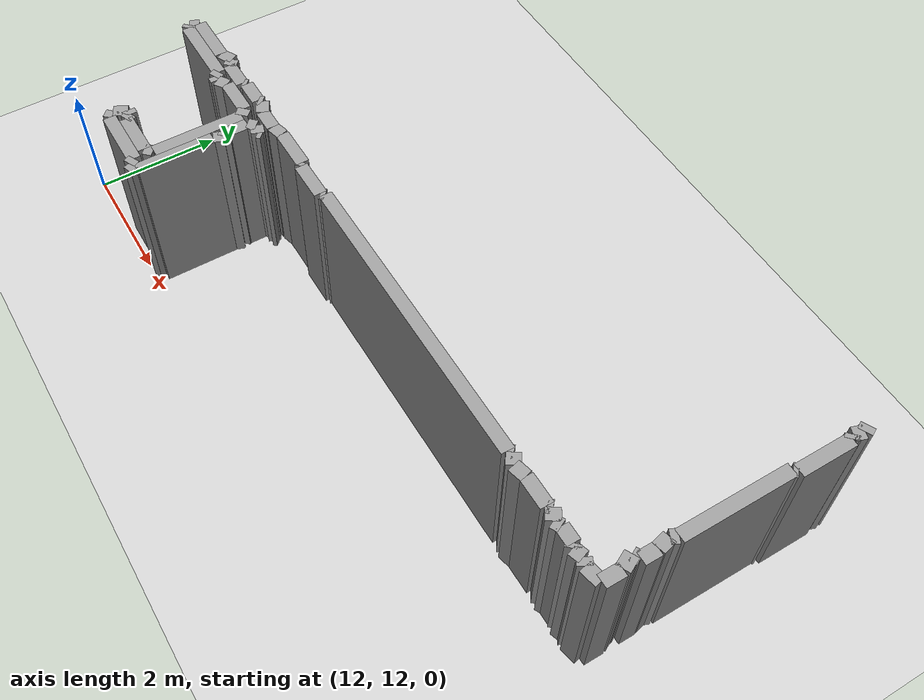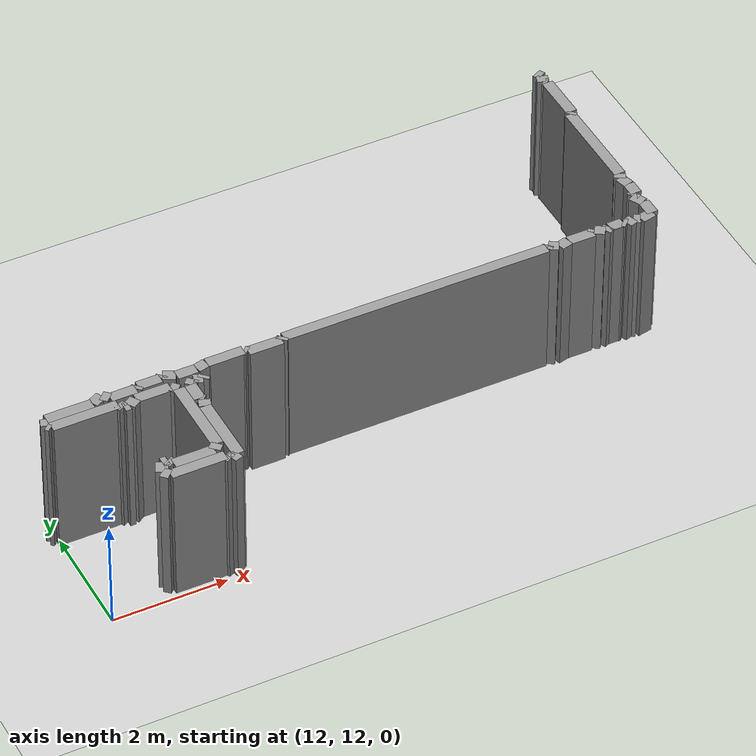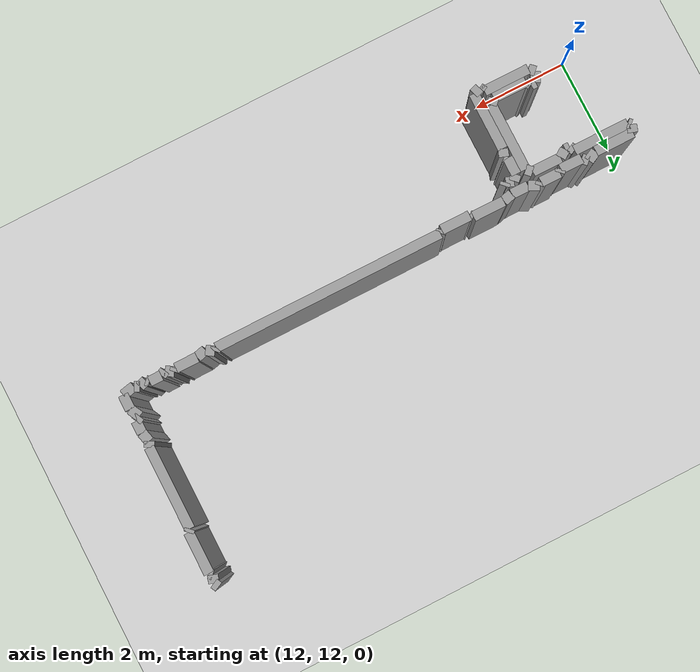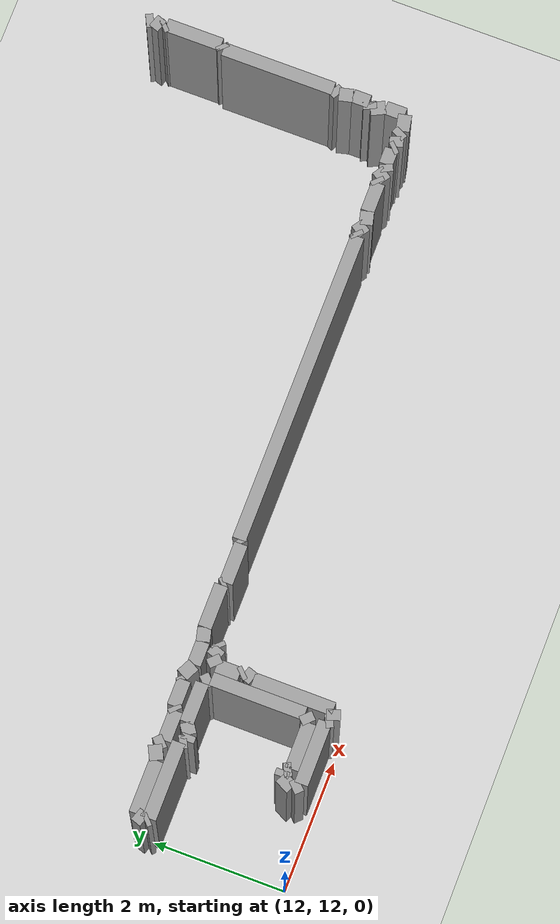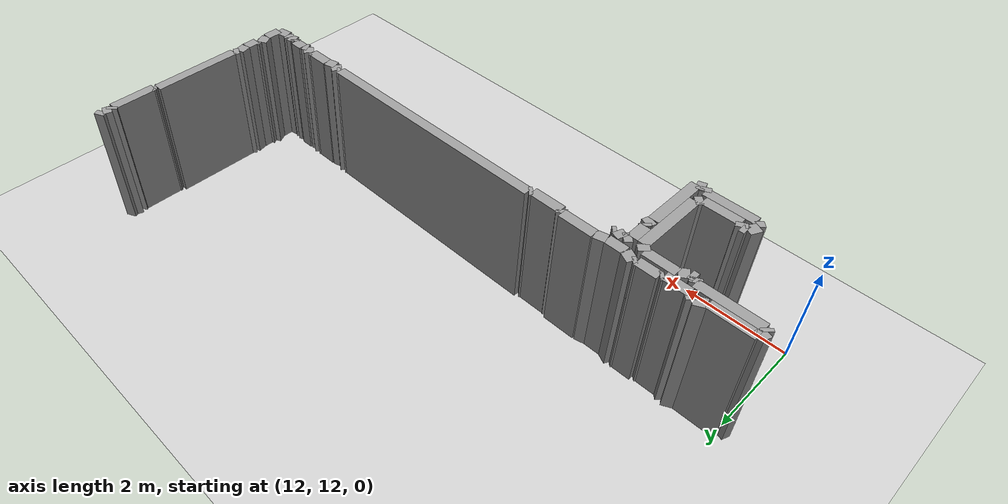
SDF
<sdf version="1.4">
 <world name="1_wall">
  <model name="ground_plane">
   <static>1</static>
   <link name="link">
    <collision name="collision">
     <geometry><plane><normal>0 0 1</normal><size>1000 1000</size></plane></geometry>
     <surface><friction><ode><mu>100</mu><mu2>50</mu2></ode></friction></surface>
    </collision>
    <visual name="visual">
     <cast_shadows>0</cast_shadows>
     <geometry><plane><normal>0 0 1</normal><size>10000 10000</size></plane></geometry>
     <material>
      <script><uri>file://media/materials/scripts/gazebo.material</uri><name>Gazebo/Grey</name></script>
     </material>
    </visual>
    <velocity_decay><linear>0</linear><angular>0</angular></velocity_decay>
   </link>
  </model>
  <model name="Wall_386">
   <static>1</static>
   <link name="Wall_386">
    <collision name="Wall_Collision_386">
     <geometry><box><size>0.111803398875 0.2 2.5</size></box></geometry>
     <pose>0 0 1.25 0 -0 0</pose>
    </collision>
    <visual name="Wall_Visual_386">
     <pose>0 0 1.25 0 -0 0</pose>
     <geometry><box><size>0.111803398875 0.2 2.5</size></box></geometry>
     <material>
      <script><uri>file://media/materials/scripts/gazebo.material</uri><name>Gazebo/Grey</name></script>
     </material>
    </visual>
    <velocity_decay><linear>0</linear><angular>0</angular></velocity_decay>
    <pose>22.825 18.2 0 0 0 -1.10714871779</pose>
   </link>
  </model>
  <model name="Wall_387">
   <static>1</static>
   <link name="Wall_387">
    <collision name="Wall_Collision_387">
     <geometry><box><size>0.158113883008 0.2 2.5</size></box></geometry>
     <pose>0 0 1.25 0 -0 0</pose>
    </collision>
    <visual name="Wall_Visual_387">
     <pose>0 0 1.25 0 -0 0</pose>
     <geometry><box><size>0.158113883008 0.2 2.5</size></box></geometry>
     <material>
      <script><uri>file://media/materials/scripts/gazebo.material</uri><name>Gazebo/Grey</name></script>
     </material>
    </visual>
    <velocity_decay><linear>0</linear><angular>0</angular></velocity_decay>
    <pose>22.825 18.075 0 0 0 -1.89254688119</pose>
   </link>
  </model>
  <model name="Wall_388">
   <static>1</static>
   <link name="Wall_388">
    <collision name="Wall_Collision_388">
     <geometry><box><size>0.0707106781187 0.2 2.5</size></box></geometry>
     <pose>0 0 1.25 0 -0 0</pose>
    </collision>
    <visual name="Wall_Visual_388">
     <pose>0 0 1.25 0 -0 0</pose>
     <geometry><box><size>0.0707106781187 0.2 2.5</size></box></geometry>
     <material>
      <script><uri>file://media/materials/scripts/gazebo.material</uri><name>Gazebo/Grey</name></script>
     </material>
    </visual>
    <velocity_decay><linear>0</linear><angular>0</angular></velocity_decay>
    <pose>22.825 17.975 0 0 0 -0.785398163397</pose>
   </link>
  </model>
  <model name="Wall_389">
   <static>1</static>
   <link name="Wall_389">
    <collision name="Wall_Collision_389">
     <geometry><box><size>0.85 0.2 2.5</size></box></geometry>
     <pose>0 0 1.25 0 -0 0</pose>
    </collision>
    <visual name="Wall_Visual_389">
     <pose>0 0 1.25 0 -0 0</pose>
     <geometry><box><size>0.85 0.2 2.5</size></box></geometry>
     <material>
      <script><uri>file://media/materials/scripts/gazebo.material</uri><name>Gazebo/Grey</name></script>
     </material>
    </visual>
    <velocity_decay><linear>0</linear><angular>0</angular></velocity_decay>
    <pose>22.85 17.525 0 0 0 -1.57079632679</pose>
   </link>
  </model>
  <model name="Wall_390">
   <static>1</static>
   <link name="Wall_390">
    <collision name="Wall_Collision_390">
     <geometry><box><size>0.0707106781187 0.2 2.5</size></box></geometry>
     <pose>0 0 1.25 0 -0 0</pose>
    </collision>
    <visual name="Wall_Visual_390">
     <pose>0 0 1.25 0 -0 0</pose>
     <geometry><box><size>0.0707106781187 0.2 2.5</size></box></geometry>
     <material>
      <script><uri>file://media/materials/scripts/gazebo.material</uri><name>Gazebo/Grey</name></script>
     </material>
    </visual>
    <velocity_decay><linear>0</linear><angular>0</angular></velocity_decay>
    <pose>22.825 17.075 0 0 0 -2.35619449019</pose>
   </link>
  </model>
  <model name="Wall_391">
   <static>1</static>
   <link name="Wall_391">
    <collision name="Wall_Collision_391">
     <geometry><box><size>1.7 0.2 2.5</size></box></geometry>
     <pose>0 0 1.25 0 -0 0</pose>
    </collision>
    <visual name="Wall_Visual_391">
     <pose>0 0 1.25 0 -0 0</pose>
     <geometry><box><size>1.7 0.2 2.5</size></box></geometry>
     <material>
      <script><uri>file://media/materials/scripts/gazebo.material</uri><name>Gazebo/Grey</name></script>
     </material>
    </visual>
    <velocity_decay><linear>0</linear><angular>0</angular></velocity_decay>
    <pose>22.8 16.2 0 0 0 -1.57079632679</pose>
   </link>
  </model>
  <model name="Wall_392">
   <static>1</static>
   <link name="Wall_392">
    <collision name="Wall_Collision_392">
     <geometry><box><size>0.111803398875 0.2 2.5</size></box></geometry>
     <pose>0 0 1.25 0 -0 0</pose>
    </collision>
    <visual name="Wall_Visual_392">
     <pose>0 0 1.25 0 -0 0</pose>
     <geometry><box><size>0.111803398875 0.2 2.5</size></box></geometry>
     <material>
      <script><uri>file://media/materials/scripts/gazebo.material</uri><name>Gazebo/Grey</name></script>
     </material>
    </visual>
    <velocity_decay><linear>0</linear><angular>0</angular></velocity_decay>
    <pose>22.775 15.3 0 0 0 -2.0344439358</pose>
   </link>
  </model>
  <model name="Wall_393">
   <static>1</static>
   <link name="Wall_393">
    <collision name="Wall_Collision_393">
     <geometry><box><size>0.206155281281 0.2 2.5</size></box></geometry>
     <pose>0 0 1.25 0 -0 0</pose>
    </collision>
    <visual name="Wall_Visual_393">
     <pose>0 0 1.25 0 -0 0</pose>
     <geometry><box><size>0.206155281281 0.2 2.5</size></box></geometry>
     <material>
      <script><uri>file://media/materials/scripts/gazebo.material</uri><name>Gazebo/Grey</name></script>
     </material>
    </visual>
    <velocity_decay><linear>0</linear><angular>0</angular></velocity_decay>
    <pose>22.775 15.15 0 0 0 -1.32581766367</pose>
   </link>
  </model>
  <model name="Wall_394">
   <static>1</static>
   <link name="Wall_394">
    <collision name="Wall_Collision_394">
     <geometry><box><size>0.25 0.2 2.5</size></box></geometry>
     <pose>0 0 1.25 0 -0 0</pose>
    </collision>
    <visual name="Wall_Visual_394">
     <pose>0 0 1.25 0 -0 0</pose>
     <geometry><box><size>0.25 0.2 2.5</size></box></geometry>
     <material>
      <script><uri>file://media/materials/scripts/gazebo.material</uri><name>Gazebo/Grey</name></script>
     </material>
    </visual>
    <velocity_decay><linear>0</linear><angular>0</angular></velocity_decay>
    <pose>22.8 14.925 0 0 0 -1.57079632679</pose>
   </link>
  </model>
  <model name="Wall_395">
   <static>1</static>
   <link name="Wall_395">
    <collision name="Wall_Collision_395">
     <geometry><box><size>0.111803398875 0.2 2.5</size></box></geometry>
     <pose>0 0 1.25 0 -0 0</pose>
    </collision>
    <visual name="Wall_Visual_395">
     <pose>0 0 1.25 0 -0 0</pose>
     <geometry><box><size>0.111803398875 0.2 2.5</size></box></geometry>
     <material>
      <script><uri>file://media/materials/scripts/gazebo.material</uri><name>Gazebo/Grey</name></script>
     </material>
    </visual>
    <velocity_decay><linear>0</linear><angular>0</angular></velocity_decay>
    <pose>22.75 14.775 0 0 0 -2.67794504459</pose>
   </link>
  </model>
  <model name="Wall_396">
   <static>1</static>
   <link name="Wall_396">
    <collision name="Wall_Collision_396">
     <geometry><box><size>0.22360679775 0.2 2.5</size></box></geometry>
     <pose>0 0 1.25 0 -0 0</pose>
    </collision>
    <visual name="Wall_Visual_396">
     <pose>0 0 1.25 0 -0 0</pose>
     <geometry><box><size>0.22360679775 0.2 2.5</size></box></geometry>
     <material>
      <script><uri>file://media/materials/scripts/gazebo.material</uri><name>Gazebo/Grey</name></script>
     </material>
    </visual>
    <velocity_decay><linear>0</linear><angular>0</angular></velocity_decay>
    <pose>22.75 14.65 0 0 0 -1.10714871779</pose>
   </link>
  </model>
  <model name="Wall_397">
   <static>1</static>
   <link name="Wall_397">
    <collision name="Wall_Collision_397">
     <geometry><box><size>0.3 0.2 2.5</size></box></geometry>
     <pose>0 0 1.25 0 -0 0</pose>
    </collision>
    <visual name="Wall_Visual_397">
     <pose>0 0 1.25 0 -0 0</pose>
     <geometry><box><size>0.3 0.2 2.5</size></box></geometry>
     <material>
      <script><uri>file://media/materials/scripts/gazebo.material</uri><name>Gazebo/Grey</name></script>
     </material>
    </visual>
    <velocity_decay><linear>0</linear><angular>0</angular></velocity_decay>
    <pose>22.8 14.4 0 0 0 -1.57079632679</pose>
   </link>
  </model>
  <model name="Wall_398">
   <static>1</static>
   <link name="Wall_398">
    <collision name="Wall_Collision_398">
     <geometry><box><size>0.25495097568 0.2 2.5</size></box></geometry>
     <pose>0 0 1.25 0 -0 0</pose>
    </collision>
    <visual name="Wall_Visual_398">
     <pose>0 0 1.25 0 -0 0</pose>
     <geometry><box><size>0.25495097568 0.2 2.5</size></box></geometry>
     <material>
      <script><uri>file://media/materials/scripts/gazebo.material</uri><name>Gazebo/Grey</name></script>
     </material>
    </visual>
    <velocity_decay><linear>0</linear><angular>0</angular></velocity_decay>
    <pose>22.675 14.225 0 0 0 -2.94419709374</pose>
   </link>
  </model>
  <model name="Wall_399">
   <static>1</static>
   <link name="Wall_399">
    <collision name="Wall_Collision_399">
     <geometry><box><size>0.111803398875 0.2 2.5</size></box></geometry>
     <pose>0 0 1.25 0 -0 0</pose>
    </collision>
    <visual name="Wall_Visual_399">
     <pose>0 0 1.25 0 -0 0</pose>
     <geometry><box><size>0.111803398875 0.2 2.5</size></box></geometry>
     <material>
      <script><uri>file://media/materials/scripts/gazebo.material</uri><name>Gazebo/Grey</name></script>
     </material>
    </visual>
    <velocity_decay><linear>0</linear><angular>0</angular></velocity_decay>
    <pose>22.5 14.225 0 0 0 2.67794504459</pose>
   </link>
  </model>
  <model name="Wall_400">
   <static>1</static>
   <link name="Wall_400">
    <collision name="Wall_Collision_400">
     <geometry><box><size>0.158113883008 0.2 2.5</size></box></geometry>
     <pose>0 0 1.25 0 -0 0</pose>
    </collision>
    <visual name="Wall_Visual_400">
     <pose>0 0 1.25 0 -0 0</pose>
     <geometry><box><size>0.158113883008 0.2 2.5</size></box></geometry>
     <material>
      <script><uri>file://media/materials/scripts/gazebo.material</uri><name>Gazebo/Grey</name></script>
     </material>
    </visual>
    <velocity_decay><linear>0</linear><angular>0</angular></velocity_decay>
    <pose>22.375 14.225 0 0 0 -2.81984209919</pose>
   </link>
  </model>
  <model name="Wall_401">
   <static>1</static>
   <link name="Wall_401">
    <collision name="Wall_Collision_401">
     <geometry><box><size>0.0707106781187 0.2 2.5</size></box></geometry>
     <pose>0 0 1.25 0 -0 0</pose>
    </collision>
    <visual name="Wall_Visual_401">
     <pose>0 0 1.25 0 -0 0</pose>
     <geometry><box><size>0.0707106781187 0.2 2.5</size></box></geometry>
     <material>
      <script><uri>file://media/materials/scripts/gazebo.material</uri><name>Gazebo/Grey</name></script>
     </material>
    </visual>
    <velocity_decay><linear>0</linear><angular>0</angular></velocity_decay>
    <pose>22.275 14.225 0 0 0 2.35619449019</pose>
   </link>
  </model>
  <model name="Wall_402">
   <static>1</static>
   <link name="Wall_402">
    <collision name="Wall_Collision_402">
     <geometry><box><size>0.25 0.2 2.5</size></box></geometry>
     <pose>0 0 1.25 0 -0 0</pose>
    </collision>
    <visual name="Wall_Visual_402">
     <pose>0 0 1.25 0 -0 0</pose>
     <geometry><box><size>0.25 0.2 2.5</size></box></geometry>
     <material>
      <script><uri>file://media/materials/scripts/gazebo.material</uri><name>Gazebo/Grey</name></script>
     </material>
    </visual>
    <velocity_decay><linear>0</linear><angular>0</angular></velocity_decay>
    <pose>22.125 14.25 0 0 0 3.14159265359</pose>
   </link>
  </model>
  <model name="Wall_403">
   <static>1</static>
   <link name="Wall_403">
    <collision name="Wall_Collision_403">
     <geometry><box><size>0.111803398875 0.2 2.5</size></box></geometry>
     <pose>0 0 1.25 0 -0 0</pose>
    </collision>
    <visual name="Wall_Visual_403">
     <pose>0 0 1.25 0 -0 0</pose>
     <geometry><box><size>0.111803398875 0.2 2.5</size></box></geometry>
     <material>
      <script><uri>file://media/materials/scripts/gazebo.material</uri><name>Gazebo/Grey</name></script>
     </material>
    </visual>
    <velocity_decay><linear>0</linear><angular>0</angular></velocity_decay>
    <pose>21.95 14.225 0 0 0 -2.67794504459</pose>
   </link>
  </model>
  <model name="Wall_404">
   <static>1</static>
   <link name="Wall_404">
    <collision name="Wall_Collision_404">
     <geometry><box><size>0.180277563773 0.2 2.5</size></box></geometry>
     <pose>0 0 1.25 0 -0 0</pose>
    </collision>
    <visual name="Wall_Visual_404">
     <pose>0 0 1.25 0 -0 0</pose>
     <geometry><box><size>0.180277563773 0.2 2.5</size></box></geometry>
     <material>
      <script><uri>file://media/materials/scripts/gazebo.material</uri><name>Gazebo/Grey</name></script>
     </material>
    </visual>
    <velocity_decay><linear>0</linear><angular>0</angular></velocity_decay>
    <pose>21.825 14.25 0 0 0 2.55359005004</pose>
   </link>
  </model>
  <model name="Wall_405">
   <static>1</static>
   <link name="Wall_405">
    <collision name="Wall_Collision_405">
     <geometry><box><size>0.0707106781187 0.2 2.5</size></box></geometry>
     <pose>0 0 1.25 0 -0 0</pose>
    </collision>
    <visual name="Wall_Visual_405">
     <pose>0 0 1.25 0 -0 0</pose>
     <geometry><box><size>0.0707106781187 0.2 2.5</size></box></geometry>
     <material>
      <script><uri>file://media/materials/scripts/gazebo.material</uri><name>Gazebo/Grey</name></script>
     </material>
    </visual>
    <velocity_decay><linear>0</linear><angular>0</angular></velocity_decay>
    <pose>21.725 14.275 0 0 0 -2.35619449019</pose>
   </link>
  </model>
  <model name="Wall_406">
   <static>1</static>
   <link name="Wall_406">
    <collision name="Wall_Collision_406">
     <geometry><box><size>0.45 0.2 2.5</size></box></geometry>
     <pose>0 0 1.25 0 -0 0</pose>
    </collision>
    <visual name="Wall_Visual_406">
     <pose>0 0 1.25 0 -0 0</pose>
     <geometry><box><size>0.45 0.2 2.5</size></box></geometry>
     <material>
      <script><uri>file://media/materials/scripts/gazebo.material</uri><name>Gazebo/Grey</name></script>
     </material>
    </visual>
    <velocity_decay><linear>0</linear><angular>0</angular></velocity_decay>
    <pose>21.475 14.25 0 0 0 3.14159265359</pose>
   </link>
  </model>
  <model name="Wall_407">
   <static>1</static>
   <link name="Wall_407">
    <collision name="Wall_Collision_407">
     <geometry><box><size>0.206155281281 0.2 2.5</size></box></geometry>
     <pose>0 0 1.25 0 -0 0</pose>
    </collision>
    <visual name="Wall_Visual_407">
     <pose>0 0 1.25 0 -0 0</pose>
     <geometry><box><size>0.206155281281 0.2 2.5</size></box></geometry>
     <material>
      <script><uri>file://media/materials/scripts/gazebo.material</uri><name>Gazebo/Grey</name></script>
     </material>
    </visual>
    <velocity_decay><linear>0</linear><angular>0</angular></velocity_decay>
    <pose>21.15 14.225 0 0 0 -2.89661399046</pose>
   </link>
  </model>
  <model name="Wall_408">
   <static>1</static>
   <link name="Wall_408">
    <collision name="Wall_Collision_408">
     <geometry><box><size>0.180277563773 0.2 2.5</size></box></geometry>
     <pose>0 0 1.25 0 -0 0</pose>
    </collision>
    <visual name="Wall_Visual_408">
     <pose>0 0 1.25 0 -0 0</pose>
     <geometry><box><size>0.180277563773 0.2 2.5</size></box></geometry>
     <material>
      <script><uri>file://media/materials/scripts/gazebo.material</uri><name>Gazebo/Grey</name></script>
     </material>
    </visual>
    <velocity_decay><linear>0</linear><angular>0</angular></velocity_decay>
    <pose>20.975 14.25 0 0 0 2.55359005004</pose>
   </link>
  </model>
  <model name="Wall_409">
   <static>1</static>
   <link name="Wall_409">
    <collision name="Wall_Collision_409">
     <geometry><box><size>0.0707106781187 0.2 2.5</size></box></geometry>
     <pose>0 0 1.25 0 -0 0</pose>
    </collision>
    <visual name="Wall_Visual_409">
     <pose>0 0 1.25 0 -0 0</pose>
     <geometry><box><size>0.0707106781187 0.2 2.5</size></box></geometry>
     <material>
      <script><uri>file://media/materials/scripts/gazebo.material</uri><name>Gazebo/Grey</name></script>
     </material>
    </visual>
    <velocity_decay><linear>0</linear><angular>0</angular></velocity_decay>
    <pose>20.875 14.275 0 0 0 -2.35619449019</pose>
   </link>
  </model>
  <model name="Wall_410">
   <static>1</static>
   <link name="Wall_410">
    <collision name="Wall_Collision_410">
     <geometry><box><size>4.75 0.2 2.5</size></box></geometry>
     <pose>0 0 1.25 0 -0 0</pose>
    </collision>
    <visual name="Wall_Visual_410">
     <pose>0 0 1.25 0 -0 0</pose>
     <geometry><box><size>4.75 0.2 2.5</size></box></geometry>
     <material>
      <script><uri>file://media/materials/scripts/gazebo.material</uri><name>Gazebo/Grey</name></script>
     </material>
    </visual>
    <velocity_decay><linear>0</linear><angular>0</angular></velocity_decay>
    <pose>18.475 14.25 0 0 0 3.14159265359</pose>
   </link>
  </model>
  <model name="Wall_411">
   <static>1</static>
   <link name="Wall_411">
    <collision name="Wall_Collision_411">
     <geometry><box><size>0.0707106781187 0.2 2.5</size></box></geometry>
     <pose>0 0 1.25 0 -0 0</pose>
    </collision>
    <visual name="Wall_Visual_411">
     <pose>0 0 1.25 0 -0 0</pose>
     <geometry><box><size>0.0707106781187 0.2 2.5</size></box></geometry>
     <material>
      <script><uri>file://media/materials/scripts/gazebo.material</uri><name>Gazebo/Grey</name></script>
     </material>
    </visual>
    <velocity_decay><linear>0</linear><angular>0</angular></velocity_decay>
    <pose>16.075 14.225 0 0 0 -2.35619449019</pose>
   </link>
  </model>
  <model name="Wall_412">
   <static>1</static>
   <link name="Wall_412">
    <collision name="Wall_Collision_412">
     <geometry><box><size>0.6 0.2 2.5</size></box></geometry>
     <pose>0 0 1.25 0 -0 0</pose>
    </collision>
    <visual name="Wall_Visual_412">
     <pose>0 0 1.25 0 -0 0</pose>
     <geometry><box><size>0.6 0.2 2.5</size></box></geometry>
     <material>
      <script><uri>file://media/materials/scripts/gazebo.material</uri><name>Gazebo/Grey</name></script>
     </material>
    </visual>
    <velocity_decay><linear>0</linear><angular>0</angular></velocity_decay>
    <pose>15.75 14.2 0 0 0 3.14159265359</pose>
   </link>
  </model>
  <model name="Wall_413">
   <static>1</static>
   <link name="Wall_413">
    <collision name="Wall_Collision_413">
     <geometry><box><size>0.0707106781187 0.2 2.5</size></box></geometry>
     <pose>0 0 1.25 0 -0 0</pose>
    </collision>
    <visual name="Wall_Visual_413">
     <pose>0 0 1.25 0 -0 0</pose>
     <geometry><box><size>0.0707106781187 0.2 2.5</size></box></geometry>
     <material>
      <script><uri>file://media/materials/scripts/gazebo.material</uri><name>Gazebo/Grey</name></script>
     </material>
    </visual>
    <velocity_decay><linear>0</linear><angular>0</angular></velocity_decay>
    <pose>15.425 14.225 0 0 0 2.35619449019</pose>
   </link>
  </model>
  <model name="Wall_414">
   <static>1</static>
   <link name="Wall_414">
    <collision name="Wall_Collision_414">
     <geometry><box><size>0.65 0.2 2.5</size></box></geometry>
     <pose>0 0 1.25 0 -0 0</pose>
    </collision>
    <visual name="Wall_Visual_414">
     <pose>0 0 1.25 0 -0 0</pose>
     <geometry><box><size>0.65 0.2 2.5</size></box></geometry>
     <material>
      <script><uri>file://media/materials/scripts/gazebo.material</uri><name>Gazebo/Grey</name></script>
     </material>
    </visual>
    <velocity_decay><linear>0</linear><angular>0</angular></velocity_decay>
    <pose>15.075 14.25 0 0 0 3.14159265359</pose>
   </link>
  </model>
  <model name="Wall_415">
   <static>1</static>
   <link name="Wall_415">
    <collision name="Wall_Collision_415">
     <geometry><box><size>0.206155281281 0.2 2.5</size></box></geometry>
     <pose>0 0 1.25 0 -0 0</pose>
    </collision>
    <visual name="Wall_Visual_415">
     <pose>0 0 1.25 0 -0 0</pose>
     <geometry><box><size>0.206155281281 0.2 2.5</size></box></geometry>
     <material>
      <script><uri>file://media/materials/scripts/gazebo.material</uri><name>Gazebo/Grey</name></script>
     </material>
    </visual>
    <velocity_decay><linear>0</linear><angular>0</angular></velocity_decay>
    <pose>14.65 14.225 0 0 0 -2.89661399046</pose>
   </link>
  </model>
  <model name="Wall_416">
   <static>1</static>
   <link name="Wall_416">
    <collision name="Wall_Collision_416">
     <geometry><box><size>0.35 0.2 2.5</size></box></geometry>
     <pose>0 0 1.25 0 -0 0</pose>
    </collision>
    <visual name="Wall_Visual_416">
     <pose>0 0 1.25 0 -0 0</pose>
     <geometry><box><size>0.35 0.2 2.5</size></box></geometry>
     <material>
      <script><uri>file://media/materials/scripts/gazebo.material</uri><name>Gazebo/Grey</name></script>
     </material>
    </visual>
    <velocity_decay><linear>0</linear><angular>0</angular></velocity_decay>
    <pose>14.375 14.2 0 0 0 3.14159265359</pose>
   </link>
  </model>
  <model name="Wall_417">
   <static>1</static>
   <link name="Wall_417">
    <collision name="Wall_Collision_417">
     <geometry><box><size>0.22360679775 0.2 2.5</size></box></geometry>
     <pose>0 0 1.25 0 -0 0</pose>
    </collision>
    <visual name="Wall_Visual_417">
     <pose>0 0 1.25 0 -0 0</pose>
     <geometry><box><size>0.22360679775 0.2 2.5</size></box></geometry>
     <material>
      <script><uri>file://media/materials/scripts/gazebo.material</uri><name>Gazebo/Grey</name></script>
     </material>
    </visual>
    <velocity_decay><linear>0</linear><angular>0</angular></velocity_decay>
    <pose>14.1 14.25 0 0 0 2.67794504459</pose>
   </link>
  </model>
  <model name="Wall_418">
   <static>1</static>
   <link name="Wall_418">
    <collision name="Wall_Collision_418">
     <geometry><box><size>0.0707106781187 0.2 2.5</size></box></geometry>
     <pose>0 0 1.25 0 -0 0</pose>
    </collision>
    <visual name="Wall_Visual_418">
     <pose>0 0 1.25 0 -0 0</pose>
     <geometry><box><size>0.0707106781187 0.2 2.5</size></box></geometry>
     <material>
      <script><uri>file://media/materials/scripts/gazebo.material</uri><name>Gazebo/Grey</name></script>
     </material>
    </visual>
    <velocity_decay><linear>0</linear><angular>0</angular></velocity_decay>
    <pose>13.975 14.275 0 0 0 -2.35619449019</pose>
   </link>
  </model>
  <model name="Wall_419">
   <static>1</static>
   <link name="Wall_419">
    <collision name="Wall_Collision_419">
     <geometry><box><size>0.4 0.2 2.5</size></box></geometry>
     <pose>0 0 1.25 0 -0 0</pose>
    </collision>
    <visual name="Wall_Visual_419">
     <pose>0 0 1.25 0 -0 0</pose>
     <geometry><box><size>0.4 0.2 2.5</size></box></geometry>
     <material>
      <script><uri>file://media/materials/scripts/gazebo.material</uri><name>Gazebo/Grey</name></script>
     </material>
    </visual>
    <velocity_decay><linear>0</linear><angular>0</angular></velocity_decay>
    <pose>13.75 14.25 0 0 0 3.14159265359</pose>
   </link>
  </model>
  <model name="Wall_420">
   <static>1</static>
   <link name="Wall_420">
    <collision name="Wall_Collision_420">
     <geometry><box><size>0.0707106781187 0.2 2.5</size></box></geometry>
     <pose>0 0 1.25 0 -0 0</pose>
    </collision>
    <visual name="Wall_Visual_420">
     <pose>0 0 1.25 0 -0 0</pose>
     <geometry><box><size>0.0707106781187 0.2 2.5</size></box></geometry>
     <material>
      <script><uri>file://media/materials/scripts/gazebo.material</uri><name>Gazebo/Grey</name></script>
     </material>
    </visual>
    <velocity_decay><linear>0</linear><angular>0</angular></velocity_decay>
    <pose>13.525 14.225 0 0 0 -2.35619449019</pose>
   </link>
  </model>
  <model name="Wall_421">
   <static>1</static>
   <link name="Wall_421">
    <collision name="Wall_Collision_421">
     <geometry><box><size>0.45 0.2 2.5</size></box></geometry>
     <pose>0 0 1.25 0 -0 0</pose>
    </collision>
    <visual name="Wall_Visual_421">
     <pose>0 0 1.25 0 -0 0</pose>
     <geometry><box><size>0.45 0.2 2.5</size></box></geometry>
     <material>
      <script><uri>file://media/materials/scripts/gazebo.material</uri><name>Gazebo/Grey</name></script>
     </material>
    </visual>
    <velocity_decay><linear>0</linear><angular>0</angular></velocity_decay>
    <pose>13.275 14.2 0 0 0 3.14159265359</pose>
   </link>
  </model>
  <model name="Wall_422">
   <static>1</static>
   <link name="Wall_422">
    <collision name="Wall_Collision_422">
     <geometry><box><size>0.141421356237 0.2 2.5</size></box></geometry>
     <pose>0 0 1.25 0 -0 0</pose>
    </collision>
    <visual name="Wall_Visual_422">
     <pose>0 0 1.25 0 -0 0</pose>
     <geometry><box><size>0.141421356237 0.2 2.5</size></box></geometry>
     <material>
      <script><uri>file://media/materials/scripts/gazebo.material</uri><name>Gazebo/Grey</name></script>
     </material>
    </visual>
    <velocity_decay><linear>0</linear><angular>0</angular></velocity_decay>
    <pose>13.0 14.25 0 0 0 2.35619449019</pose>
   </link>
  </model>
  <model name="Wall_423">
   <static>1</static>
   <link name="Wall_423">
    <collision name="Wall_Collision_423">
     <geometry><box><size>0.22360679775 0.2 2.5</size></box></geometry>
     <pose>0 0 1.25 0 -0 0</pose>
    </collision>
    <visual name="Wall_Visual_423">
     <pose>0 0 1.25 0 -0 0</pose>
     <geometry><box><size>0.22360679775 0.2 2.5</size></box></geometry>
     <material>
      <script><uri>file://media/materials/scripts/gazebo.material</uri><name>Gazebo/Grey</name></script>
     </material>
    </visual>
    <velocity_decay><linear>0</linear><angular>0</angular></velocity_decay>
    <pose>12.85 14.25 0 0 0 -2.67794504459</pose>
   </link>
  </model>
  <model name="Wall_424">
   <static>1</static>
   <link name="Wall_424">
    <collision name="Wall_Collision_424">
     <geometry><box><size>0.8 0.2 2.5</size></box></geometry>
     <pose>0 0 1.25 0 -0 0</pose>
    </collision>
    <visual name="Wall_Visual_424">
     <pose>0 0 1.25 0 -0 0</pose>
     <geometry><box><size>0.8 0.2 2.5</size></box></geometry>
     <material>
      <script><uri>file://media/materials/scripts/gazebo.material</uri><name>Gazebo/Grey</name></script>
     </material>
    </visual>
    <velocity_decay><linear>0</linear><angular>0</angular></velocity_decay>
    <pose>12.35 14.2 0 0 0 3.14159265359</pose>
   </link>
  </model>
  <model name="Wall_425">
   <static>1</static>
   <link name="Wall_425">
    <collision name="Wall_Collision_425">
     <geometry><box><size>0.158113883008 0.2 2.5</size></box></geometry>
     <pose>0 0 1.25 0 -0 0</pose>
    </collision>
    <visual name="Wall_Visual_425">
     <pose>0 0 1.25 0 -0 0</pose>
     <geometry><box><size>0.158113883008 0.2 2.5</size></box></geometry>
     <material>
      <script><uri>file://media/materials/scripts/gazebo.material</uri><name>Gazebo/Grey</name></script>
     </material>
    </visual>
    <velocity_decay><linear>0</linear><angular>0</angular></velocity_decay>
    <pose>11.925 14.125 0 0 0 -1.89254688119</pose>
   </link>
  </model>
  <model name="Wall_426">
   <static>1</static>
   <link name="Wall_426">
    <collision name="Wall_Collision_426">
     <geometry><box><size>0.0707106781187 0.2 2.5</size></box></geometry>
     <pose>0 0 1.25 0 -0 0</pose>
    </collision>
    <visual name="Wall_Visual_426">
     <pose>0 0 1.25 0 -0 0</pose>
     <geometry><box><size>0.0707106781187 0.2 2.5</size></box></geometry>
     <material>
      <script><uri>file://media/materials/scripts/gazebo.material</uri><name>Gazebo/Grey</name></script>
     </material>
    </visual>
    <velocity_decay><linear>0</linear><angular>0</angular></velocity_decay>
    <pose>11.925 14.025 0 0 0 -0.785398163397</pose>
   </link>
  </model>
  <model name="Wall_427">
   <static>1</static>
   <link name="Wall_427">
    <collision name="Wall_Collision_427">
     <geometry><box><size>1.15 0.2 2.5</size></box></geometry>
     <pose>0 0 1.25 0 -0 0</pose>
    </collision>
    <visual name="Wall_Visual_427">
     <pose>0 0 1.25 0 -0 0</pose>
     <geometry><box><size>1.15 0.2 2.5</size></box></geometry>
     <material>
      <script><uri>file://media/materials/scripts/gazebo.material</uri><name>Gazebo/Grey</name></script>
     </material>
    </visual>
    <velocity_decay><linear>0</linear><angular>0</angular></velocity_decay>
    <pose>12.525 14.0 0 0 0 0.0</pose>
   </link>
  </model>
  <model name="Wall_428">
   <static>1</static>
   <link name="Wall_428">
    <collision name="Wall_Collision_428">
     <geometry><box><size>0.111803398875 0.2 2.5</size></box></geometry>
     <pose>0 0 1.25 0 -0 0</pose>
    </collision>
    <visual name="Wall_Visual_428">
     <pose>0 0 1.25 0 -0 0</pose>
     <geometry><box><size>0.111803398875 0.2 2.5</size></box></geometry>
     <material>
      <script><uri>file://media/materials/scripts/gazebo.material</uri><name>Gazebo/Grey</name></script>
     </material>
    </visual>
    <velocity_decay><linear>0</linear><angular>0</angular></velocity_decay>
    <pose>13.125 13.95 0 0 0 -1.10714871779</pose>
   </link>
  </model>
  <model name="Wall_429">
   <static>1</static>
   <link name="Wall_429">
    <collision name="Wall_Collision_429">
     <geometry><box><size>0.1 0.2 2.5</size></box></geometry>
     <pose>0 0 1.25 0 -0 0</pose>
    </collision>
    <visual name="Wall_Visual_429">
     <pose>0 0 1.25 0 -0 0</pose>
     <geometry><box><size>0.1 0.2 2.5</size></box></geometry>
     <material>
      <script><uri>file://media/materials/scripts/gazebo.material</uri><name>Gazebo/Grey</name></script>
     </material>
    </visual>
    <velocity_decay><linear>0</linear><angular>0</angular></velocity_decay>
    <pose>13.2 13.9 0 0 0 0.0</pose>
   </link>
  </model>
  <model name="Wall_430">
   <static>1</static>
   <link name="Wall_430">
    <collision name="Wall_Collision_430">
     <geometry><box><size>0.180277563773 0.2 2.5</size></box></geometry>
     <pose>0 0 1.25 0 -0 0</pose>
    </collision>
    <visual name="Wall_Visual_430">
     <pose>0 0 1.25 0 -0 0</pose>
     <geometry><box><size>0.180277563773 0.2 2.5</size></box></geometry>
     <material>
      <script><uri>file://media/materials/scripts/gazebo.material</uri><name>Gazebo/Grey</name></script>
     </material>
    </visual>
    <velocity_decay><linear>0</linear><angular>0</angular></velocity_decay>
    <pose>13.325 13.95 0 0 0 0.588002603548</pose>
   </link>
  </model>
  <model name="Wall_431">
   <static>1</static>
   <link name="Wall_431">
    <collision name="Wall_Collision_431">
     <geometry><box><size>0.6 0.2 2.5</size></box></geometry>
     <pose>0 0 1.25 0 -0 0</pose>
    </collision>
    <visual name="Wall_Visual_431">
     <pose>0 0 1.25 0 -0 0</pose>
     <geometry><box><size>0.6 0.2 2.5</size></box></geometry>
     <material>
      <script><uri>file://media/materials/scripts/gazebo.material</uri><name>Gazebo/Grey</name></script>
     </material>
    </visual>
    <velocity_decay><linear>0</linear><angular>0</angular></velocity_decay>
    <pose>13.7 14.0 0 0 0 0.0</pose>
   </link>
  </model>
  <model name="Wall_432">
   <static>1</static>
   <link name="Wall_432">
    <collision name="Wall_Collision_432">
     <geometry><box><size>0.141421356237 0.2 2.5</size></box></geometry>
     <pose>0 0 1.25 0 -0 0</pose>
    </collision>
    <visual name="Wall_Visual_432">
     <pose>0 0 1.25 0 -0 0</pose>
     <geometry><box><size>0.141421356237 0.2 2.5</size></box></geometry>
     <material>
      <script><uri>file://media/materials/scripts/gazebo.material</uri><name>Gazebo/Grey</name></script>
     </material>
    </visual>
    <velocity_decay><linear>0</linear><angular>0</angular></velocity_decay>
    <pose>14.05 13.95 0 0 0 -0.785398163397</pose>
   </link>
  </model>
  <model name="Wall_433">
   <static>1</static>
   <link name="Wall_433">
    <collision name="Wall_Collision_433">
     <geometry><box><size>1.4 0.2 2.5</size></box></geometry>
     <pose>0 0 1.25 0 -0 0</pose>
    </collision>
    <visual name="Wall_Visual_433">
     <pose>0 0 1.25 0 -0 0</pose>
     <geometry><box><size>1.4 0.2 2.5</size></box></geometry>
     <material>
      <script><uri>file://media/materials/scripts/gazebo.material</uri><name>Gazebo/Grey</name></script>
     </material>
    </visual>
    <velocity_decay><linear>0</linear><angular>0</angular></velocity_decay>
    <pose>14.1 13.2 0 0 0 -1.57079632679</pose>
   </link>
  </model>
  <model name="Wall_434">
   <static>1</static>
   <link name="Wall_434">
    <collision name="Wall_Collision_434">
     <geometry><box><size>0.141421356237 0.2 2.5</size></box></geometry>
     <pose>0 0 1.25 0 -0 0</pose>
    </collision>
    <visual name="Wall_Visual_434">
     <pose>0 0 1.25 0 -0 0</pose>
     <geometry><box><size>0.141421356237 0.2 2.5</size></box></geometry>
     <material>
      <script><uri>file://media/materials/scripts/gazebo.material</uri><name>Gazebo/Grey</name></script>
     </material>
    </visual>
    <velocity_decay><linear>0</linear><angular>0</angular></velocity_decay>
    <pose>14.05 12.45 0 0 0 -2.35619449019</pose>
   </link>
  </model>
  <model name="Wall_435">
   <static>1</static>
   <link name="Wall_435">
    <collision name="Wall_Collision_435">
     <geometry><box><size>0.7 0.2 2.5</size></box></geometry>
     <pose>0 0 1.25 0 -0 0</pose>
    </collision>
    <visual name="Wall_Visual_435">
     <pose>0 0 1.25 0 -0 0</pose>
     <geometry><box><size>0.7 0.2 2.5</size></box></geometry>
     <material>
      <script><uri>file://media/materials/scripts/gazebo.material</uri><name>Gazebo/Grey</name></script>
     </material>
    </visual>
    <velocity_decay><linear>0</linear><angular>0</angular></velocity_decay>
    <pose>13.65 12.4 0 0 0 3.14159265359</pose>
   </link>
  </model>
  <model name="Wall_436">
   <static>1</static>
   <link name="Wall_436">
    <collision name="Wall_Collision_436">
     <geometry><box><size>0.111803398875 0.2 2.5</size></box></geometry>
     <pose>0 0 1.25 0 -0 0</pose>
    </collision>
    <visual name="Wall_Visual_436">
     <pose>0 0 1.25 0 -0 0</pose>
     <geometry><box><size>0.111803398875 0.2 2.5</size></box></geometry>
     <material>
      <script><uri>file://media/materials/scripts/gazebo.material</uri><name>Gazebo/Grey</name></script>
     </material>
    </visual>
    <velocity_decay><linear>0</linear><angular>0</angular></velocity_decay>
    <pose>13.275 12.45 0 0 0 2.0344439358</pose>
   </link>
  </model>
  <model name="Wall_437">
   <static>1</static>
   <link name="Wall_437">
    <collision name="Wall_Collision_437">
     <geometry><box><size>0.1 0.2 2.5</size></box></geometry>
     <pose>0 0 1.25 0 -0 0</pose>
    </collision>
    <visual name="Wall_Visual_437">
     <pose>0 0 1.25 0 -0 0</pose>
     <geometry><box><size>0.1 0.2 2.5</size></box></geometry>
     <material>
      <script><uri>file://media/materials/scripts/gazebo.material</uri><name>Gazebo/Grey</name></script>
     </material>
    </visual>
    <velocity_decay><linear>0</linear><angular>0</angular></velocity_decay>
    <pose>13.2 12.5 0 0 0 3.14159265359</pose>
   </link>
  </model>
  <model name="Wall_438">
   <static>1</static>
   <link name="Wall_438">
    <collision name="Wall_Collision_438">
     <geometry><box><size>0.22360679775 0.2 2.5</size></box></geometry>
     <pose>0 0 1.25 0 -0 0</pose>
    </collision>
    <visual name="Wall_Visual_438">
     <pose>0 0 1.25 0 -0 0</pose>
     <geometry><box><size>0.22360679775 0.2 2.5</size></box></geometry>
     <material>
      <script><uri>file://media/materials/scripts/gazebo.material</uri><name>Gazebo/Grey</name></script>
     </material>
    </visual>
    <velocity_decay><linear>0</linear><angular>0</angular></velocity_decay>
    <pose>13.1 12.4 0 0 0 -2.0344439358</pose>
   </link>
  </model>
  <model name="Wall_439">
   <static>1</static>
   <link name="Wall_439">
    <collision name="Wall_Collision_439">
     <geometry><box><size>0.141421356237 0.2 2.5</size></box></geometry>
     <pose>0 0 1.25 0 -0 0</pose>
    </collision>
    <visual name="Wall_Visual_439">
     <pose>0 0 1.25 0 -0 0</pose>
     <geometry><box><size>0.141421356237 0.2 2.5</size></box></geometry>
     <material>
      <script><uri>file://media/materials/scripts/gazebo.material</uri><name>Gazebo/Grey</name></script>
     </material>
    </visual>
    <velocity_decay><linear>0</linear><angular>0</angular></velocity_decay>
    <pose>13.1 12.25 0 0 0 -0.785398163397</pose>
   </link>
  </model>
  <model name="Wall_440">
   <static>1</static>
   <link name="Wall_440">
    <collision name="Wall_Collision_440">
     <geometry><box><size>0.95 0.2 2.5</size></box></geometry>
     <pose>0 0 1.25 0 -0 0</pose>
    </collision>
    <visual name="Wall_Visual_440">
     <pose>0 0 1.25 0 -0 0</pose>
     <geometry><box><size>0.95 0.2 2.5</size></box></geometry>
     <material>
      <script><uri>file://media/materials/scripts/gazebo.material</uri><name>Gazebo/Grey</name></script>
     </material>
    </visual>
    <velocity_decay><linear>0</linear><angular>0</angular></velocity_decay>
    <pose>13.625 12.2 0 0 0 0.0</pose>
   </link>
  </model>
  <model name="Wall_441">
   <static>1</static>
   <link name="Wall_441">
    <collision name="Wall_Collision_441">
     <geometry><box><size>0.111803398875 0.2 2.5</size></box></geometry>
     <pose>0 0 1.25 0 -0 0</pose>
    </collision>
    <visual name="Wall_Visual_441">
     <pose>0 0 1.25 0 -0 0</pose>
     <geometry><box><size>0.111803398875 0.2 2.5</size></box></geometry>
     <material>
      <script><uri>file://media/materials/scripts/gazebo.material</uri><name>Gazebo/Grey</name></script>
     </material>
    </visual>
    <velocity_decay><linear>0</linear><angular>0</angular></velocity_decay>
    <pose>14.125 12.15 0 0 0 -1.10714871779</pose>
   </link>
  </model>
  <model name="Wall_442">
   <static>1</static>
   <link name="Wall_442">
    <collision name="Wall_Collision_442">
     <geometry><box><size>0.158113883008 0.2 2.5</size></box></geometry>
     <pose>0 0 1.25 0 -0 0</pose>
    </collision>
    <visual name="Wall_Visual_442">
     <pose>0 0 1.25 0 -0 0</pose>
     <geometry><box><size>0.158113883008 0.2 2.5</size></box></geometry>
     <material>
      <script><uri>file://media/materials/scripts/gazebo.material</uri><name>Gazebo/Grey</name></script>
     </material>
    </visual>
    <velocity_decay><linear>0</linear><angular>0</angular></velocity_decay>
    <pose>14.225 12.125 0 0 0 0.321750554397</pose>
   </link>
  </model>
  <model name="Wall_443">
   <static>1</static>
   <link name="Wall_443">
    <collision name="Wall_Collision_443">
     <geometry><box><size>1.2 0.2 2.5</size></box></geometry>
     <pose>0 0 1.25 0 -0 0</pose>
    </collision>
    <visual name="Wall_Visual_443">
     <pose>0 0 1.25 0 -0 0</pose>
     <geometry><box><size>1.2 0.2 2.5</size></box></geometry>
     <material>
      <script><uri>file://media/materials/scripts/gazebo.material</uri><name>Gazebo/Grey</name></script>
     </material>
    </visual>
    <velocity_decay><linear>0</linear><angular>0</angular></velocity_decay>
    <pose>14.3 12.75 0 0 0 1.57079632679</pose>
   </link>
  </model>
  <model name="Wall_444">
   <static>1</static>
   <link name="Wall_444">
    <collision name="Wall_Collision_444">
     <geometry><box><size>0.158113883008 0.2 2.5</size></box></geometry>
     <pose>0 0 1.25 0 -0 0</pose>
    </collision>
    <visual name="Wall_Visual_444">
     <pose>0 0 1.25 0 -0 0</pose>
     <geometry><box><size>0.158113883008 0.2 2.5</size></box></geometry>
     <material>
      <script><uri>file://media/materials/scripts/gazebo.material</uri><name>Gazebo/Grey</name></script>
     </material>
    </visual>
    <velocity_decay><linear>0</linear><angular>0</angular></velocity_decay>
    <pose>14.325 13.425 0 0 0 1.2490457724</pose>
   </link>
  </model>
  <model name="Wall_445">
   <static>1</static>
   <link name="Wall_445">
    <collision name="Wall_Collision_445">
     <geometry><box><size>0.0707106781187 0.2 2.5</size></box></geometry>
     <pose>0 0 1.25 0 -0 0</pose>
    </collision>
    <visual name="Wall_Visual_445">
     <pose>0 0 1.25 0 -0 0</pose>
     <geometry><box><size>0.0707106781187 0.2 2.5</size></box></geometry>
     <material>
      <script><uri>file://media/materials/scripts/gazebo.material</uri><name>Gazebo/Grey</name></script>
     </material>
    </visual>
    <velocity_decay><linear>0</linear><angular>0</angular></velocity_decay>
    <pose>14.325 13.525 0 0 0 2.35619449019</pose>
   </link>
  </model>
  <model name="Wall_446">
   <static>1</static>
   <link name="Wall_446">
    <collision name="Wall_Collision_446">
     <geometry><box><size>0.35 0.2 2.5</size></box></geometry>
     <pose>0 0 1.25 0 -0 0</pose>
    </collision>
    <visual name="Wall_Visual_446">
     <pose>0 0 1.25 0 -0 0</pose>
     <geometry><box><size>0.35 0.2 2.5</size></box></geometry>
     <material>
      <script><uri>file://media/materials/scripts/gazebo.material</uri><name>Gazebo/Grey</name></script>
     </material>
    </visual>
    <velocity_decay><linear>0</linear><angular>0</angular></velocity_decay>
    <pose>14.3 13.725 0 0 0 1.57079632679</pose>
   </link>
  </model>
  <model name="Wall_447">
   <static>1</static>
   <link name="Wall_447">
    <collision name="Wall_Collision_447">
     <geometry><box><size>0.141421356237 0.2 2.5</size></box></geometry>
     <pose>0 0 1.25 0 -0 0</pose>
    </collision>
    <visual name="Wall_Visual_447">
     <pose>0 0 1.25 0 -0 0</pose>
     <geometry><box><size>0.141421356237 0.2 2.5</size></box></geometry>
     <material>
      <script><uri>file://media/materials/scripts/gazebo.material</uri><name>Gazebo/Grey</name></script>
     </material>
    </visual>
    <velocity_decay><linear>0</linear><angular>0</angular></velocity_decay>
    <pose>14.35 13.95 0 0 0 0.785398163397</pose>
   </link>
  </model>
  <model name="Wall_448">
   <static>1</static>
   <link name="Wall_448">
    <collision name="Wall_Collision_448">
     <geometry><box><size>0.158113883008 0.2 2.5</size></box></geometry>
     <pose>0 0 1.25 0 -0 0</pose>
    </collision>
    <visual name="Wall_Visual_448">
     <pose>0 0 1.25 0 -0 0</pose>
     <geometry><box><size>0.158113883008 0.2 2.5</size></box></geometry>
     <material>
      <script><uri>file://media/materials/scripts/gazebo.material</uri><name>Gazebo/Grey</name></script>
     </material>
    </visual>
    <velocity_decay><linear>0</linear><angular>0</angular></velocity_decay>
    <pose>14.475 13.975 0 0 0 -0.321750554397</pose>
   </link>
  </model>
  <model name="Wall_449">
   <static>1</static>
   <link name="Wall_449">
    <collision name="Wall_Collision_449">
     <geometry><box><size>0.0707106781187 0.2 2.5</size></box></geometry>
     <pose>0 0 1.25 0 -0 0</pose>
    </collision>
    <visual name="Wall_Visual_449">
     <pose>0 0 1.25 0 -0 0</pose>
     <geometry><box><size>0.0707106781187 0.2 2.5</size></box></geometry>
     <material>
      <script><uri>file://media/materials/scripts/gazebo.material</uri><name>Gazebo/Grey</name></script>
     </material>
    </visual>
    <velocity_decay><linear>0</linear><angular>0</angular></velocity_decay>
    <pose>14.575 13.975 0 0 0 0.785398163397</pose>
   </link>
  </model>
 </world>
</sdf>
